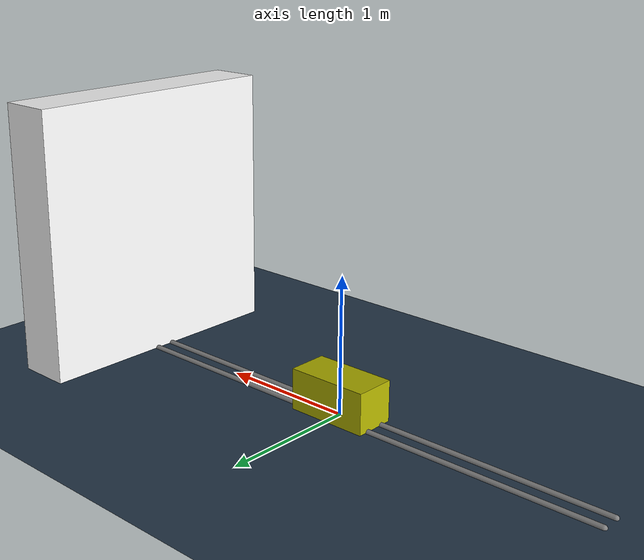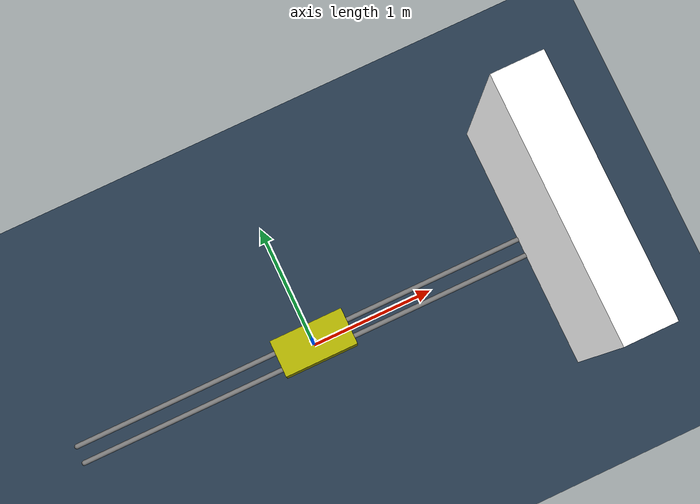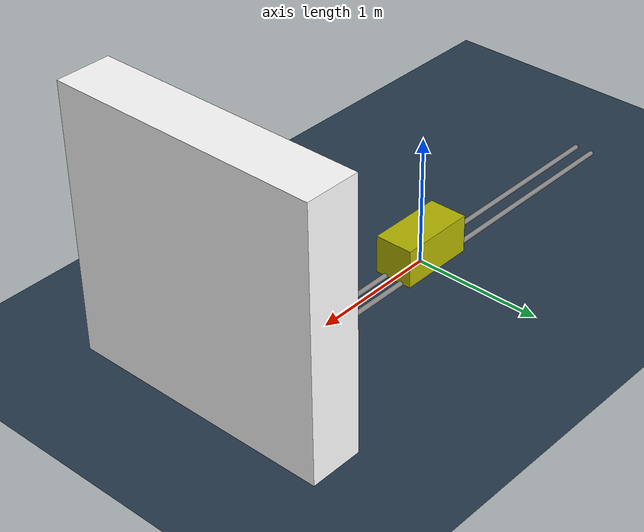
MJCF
<mujoco model='test_cartpole'>
  <compiler inertiafromgeom='true' coordinate='local'/>

  <custom>
    <numeric name="control_timestep" data="0.04" />
    <numeric name="three_numbers" data="1.0 2.0 3.0" />
  </custom>

  <option timestep='0.01'/>
  <option gravity="1e-5 0 -9.81" integrator="RK4" timestep="0.01"/>

  <default>
    <joint damping='0.05' solreflimit='.08 1'/>
    <geom contype='0' friction='1 0.1 0.1'/>
  </default>

  <!-- aesthetics for visualization -->
  <visual>
      <map fogstart="3" fogend="5" force="0.1" znear="0.5"/>
      <quality shadowsize="2048" offsamples="8"/>
      <global offwidth="800" offheight="800" />
  </visual>

  <asset>
      <texture type="skybox" builtin="gradient" width="128" height="128" rgb1=".4 .6 .8"
          rgb2="0 0 0"/>
      <texture name="texgeom" type="cube" builtin="flat" mark="cross" width="127" height="1278"
          rgb1="0.8 0.6 0.4" rgb2="0.8 0.6 0.4" markrgb="1 1 1" random="0.01"/>
      <texture name="texplane" type="2d" builtin="checker" rgb1=".2 .3 .4" rgb2=".1 0.15 0.2"
          width="512" height="512"/>

      <material name='MatPlane' reflectance='0.3' texture="texplane" texrepeat="1 1" texuniform="true"/>
      <material name='geom' texture="texgeom" texuniform="true"/>
  </asset>

  <visual>
      <quality shadowsize="4096" offsamples="8"/>
      <map znear="0.1" force="0.05"/>
  </visual>

  <!-- rigid bodies -->
  <worldbody>
    <camera name='fixed' pos='0 -2.5 0' quat='0.707 0.707 0 0'/>

    <!-- ground plane: condim=3 means regular frictional contact -->
    <geom name='floor' pos='0 0 0' size='5 5 .125' type='plane' material="MatPlane" contype='1' condim='3'/>

    <!-- x-axis rails -->
    <geom name='rail1' type='capsule' pos='0 .07 0' quat='0.707 0 0.707 0' size='0.02 2' />
    <geom name='rail2' type='capsule' pos='0 -.07 0' quat='0.707 0 0.707 0' size='0.02 2' />

    <!-- wall: condim=3 means regular frictional contact -->
    <geom name='wall' pos='2 0 1' size='1 1 0.2' rgba="1 1 1 2" quat="0.7071 0 0.7071 0" type='box' contype='1' condim='3'/>

    <body name='cart' pos='0 0 0.15'>
      <camera name='cart' pos='0 -2.5 0' quat='0.707 0.707 0 0' />
      <!-- cart moves in the x-axis -->
      <joint name='slider' type='slide' limited='true' pos='0 0 0'
               axis='1 0 0' range='-2 2' />
      <!-- cart body geometry -->
      <geom name='cart' type='box' mass='10' pos='0 0 0'
              size='.3 .15 .15' rgba='0.7 0.7 0 1' />
      <!-- 1dof pole -->
      <body name='pole' pos='0 0 0.15'>
        <camera name='pole'  pos='0 -2.5 0' quat='0.707 0.707 0 0' />
        <joint name='hinge' type='hinge' pos='0 0 0' axis='0 1 0'/>
        <geom name='cpole' type='capsule' mass='1' fromto='0 0 0 0 0 0.6'
                size='0.01 0.5' rgba='0 0.7 0.7 1' contype='1' condim='3'/>
        <site type='sphere' size='.01' name='tip' pos='.001 0 .6'/>
      </body>
      <!-- force sensor is on the end-effector -->
      <site name='tip sensor' type='box' pos='.001 0 .6'
              size='0.09 0.09 0.09' rgba='1.0 0.7 0 0' />
    </body>

  </worldbody>

  <!-- control inputs -->
  <actuator>
    <motor name='slider_joint' joint='slider' gear='50' ctrllimited='true' ctrlrange='-35 35' />
    <motor name='pole_hinge' joint='hinge' gear='50' ctrllimited='true' ctrlrange='-5 5' />
  </actuator>

  <!-- sensors (force sensor -- might want torque instead?) -->
  <sensor>
    <force name="collision" site="tip sensor"/>
  </sensor>

</mujoco>
